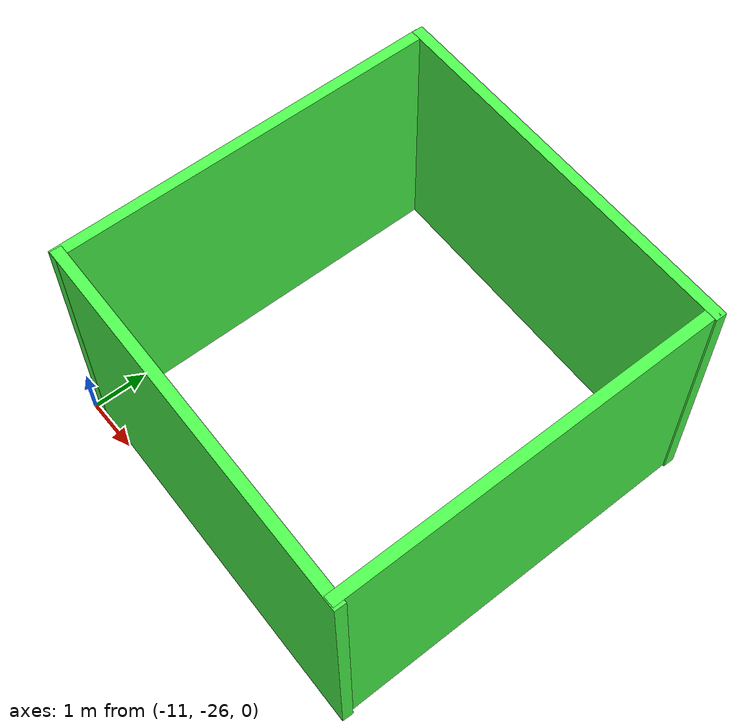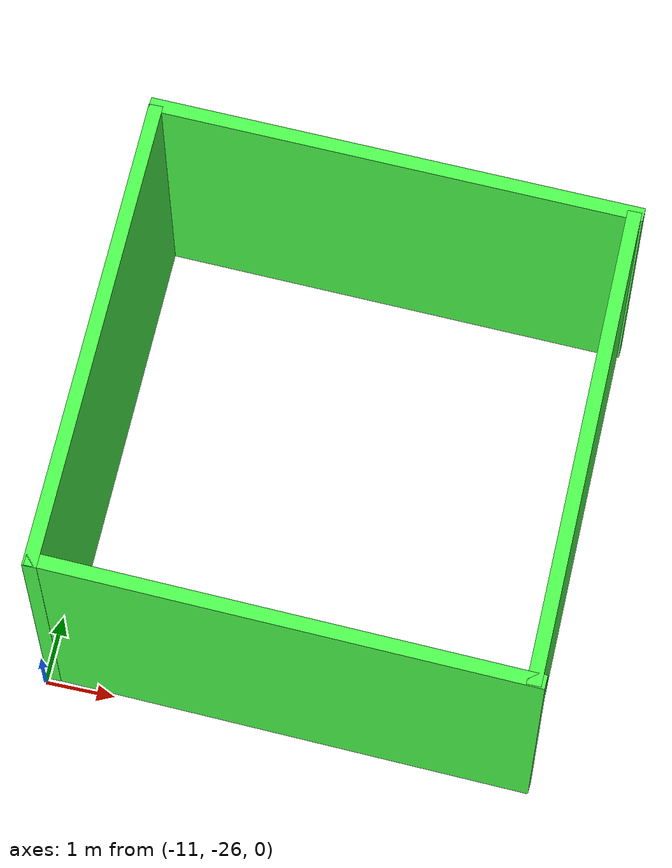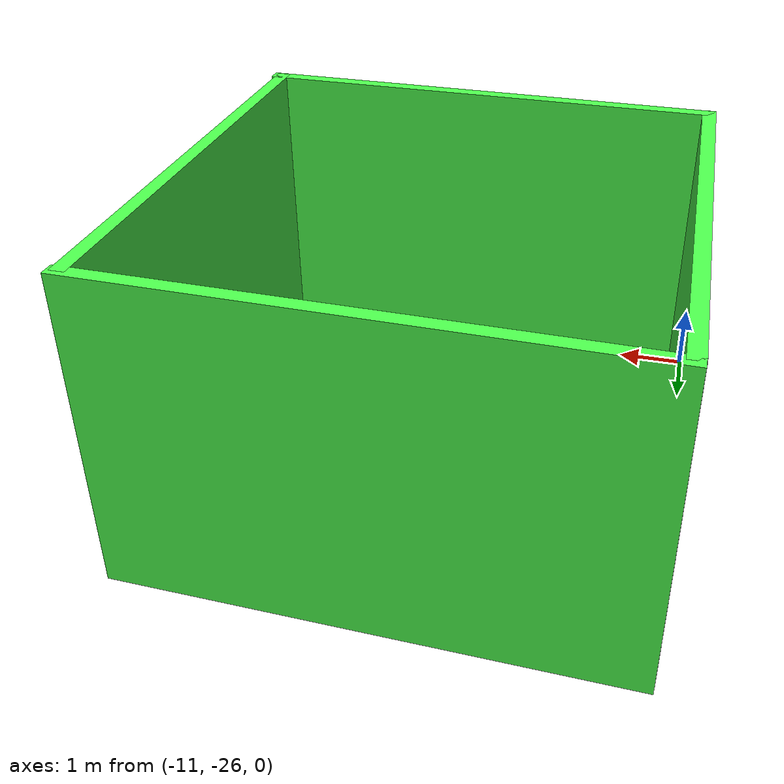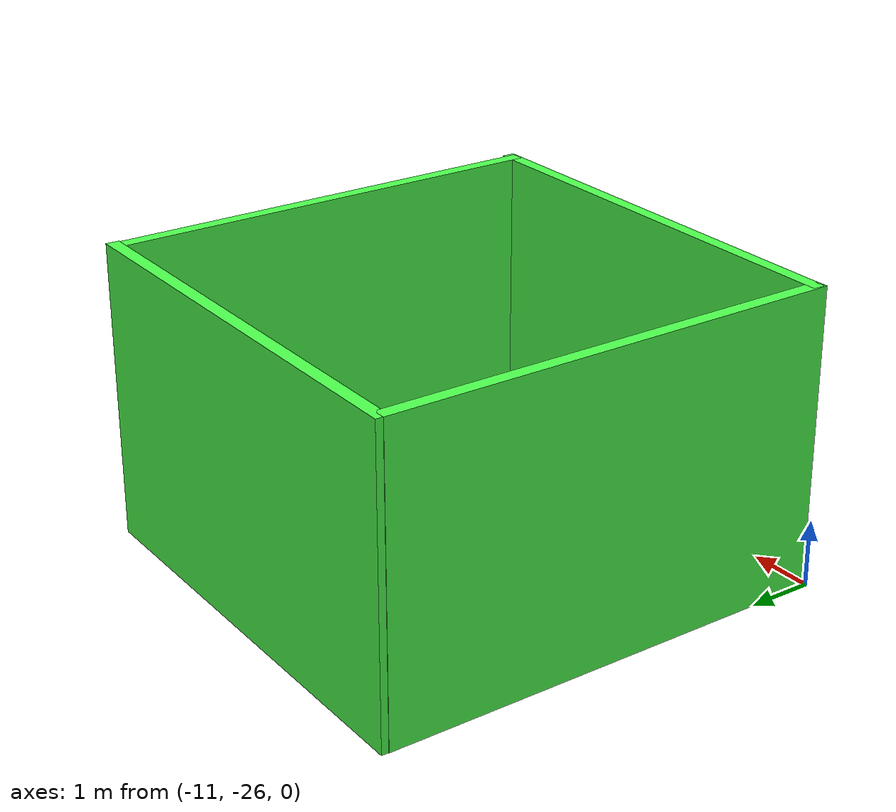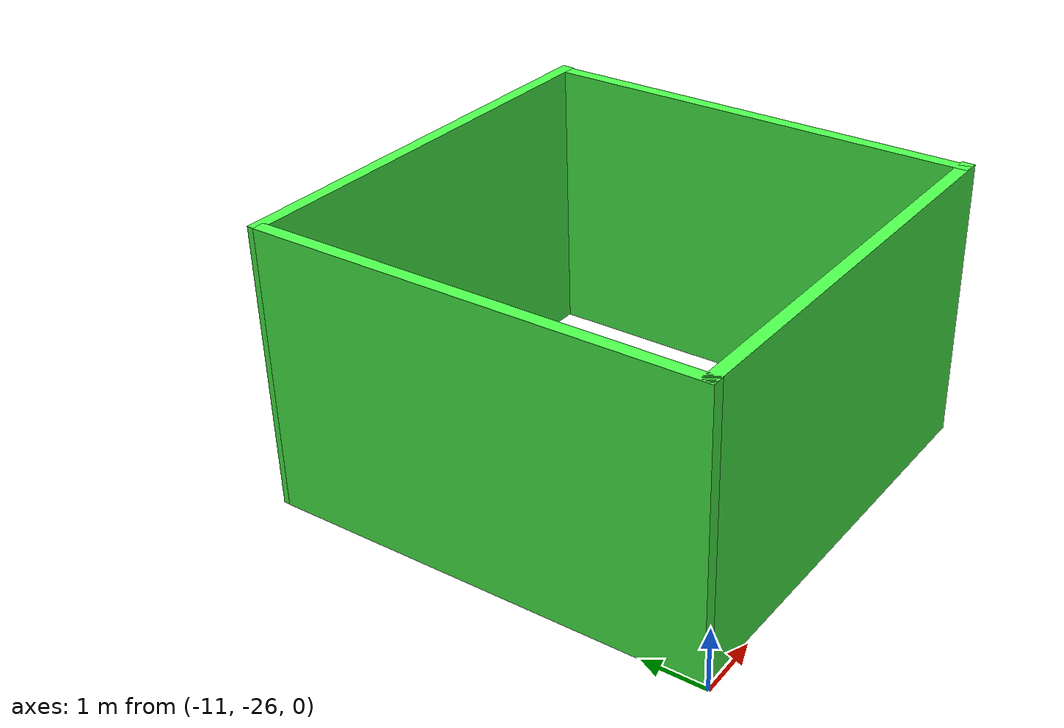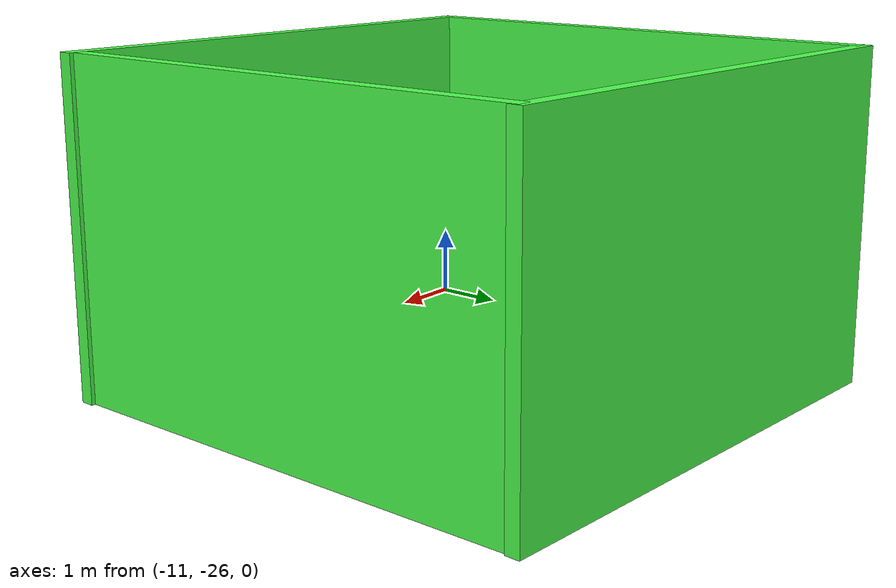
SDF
<sdf version="1.7">
 <world name="default">
  <model name="wall_clone_5">
   <pose>-7.5 -22.5 2.25 0 -0 0</pose>
   <frame name="closed_green_wall::__model__" attached_to="closed_green_wall::link_0">
    <pose relative_to="__model__">0 0 0 0 -0 0</pose>
   </frame>
   <link name="closed_green_wall::link_0">
    <inertial>
     <mass>1</mass>
     <inertia>
      <ixx>0.166667</ixx>
      <ixy>0</ixy>
      <ixz>0</ixz>
      <iyy>0.166667</iyy>
      <iyz>0</iyz>
      <izz>0.166667</izz>
     </inertia>
    </inertial>
    <pose relative_to="closed_green_wall::__model__">3.37098 -0.107634 -0 0 -0 0</pose>
    <visual name="visual">
     <geometry><box><size>0.2 7 4.5</size></box></geometry>
     <material>
      <lighting>1</lighting>
      <script><uri>file://media/materials/scripts/gazebo.material</uri><name>Gazebo/Grey</name></script>
      <shader type="vertex"><normal_map>__default__</normal_map></shader>
      <ambient>0.3 1 0.3 1</ambient>
      <diffuse>0.7 0.7 0.7 1</diffuse>
      <specular>0.01 0.01 0.01 1</specular>
      <emissive>0 0 0 1</emissive>
     </material>
    </visual>
    <collision name="collision">
     <geometry><box><size>0.2 7 4.5</size></box></geometry>
     <surface>
      <friction>
       <ode><mu>1</mu><mu2>1</mu2><fdir1>0 0 0</fdir1><slip1>0</slip1><slip2>0</slip2></ode>
       <torsional>
        <coefficient>1</coefficient>
        <patch_radius>0</patch_radius>
        <surface_radius>0</surface_radius>
        <use_patch_radius>1</use_patch_radius>
        <ode><slip>0</slip></ode>
       </torsional>
      </friction>
      <bounce><restitution_coefficient>0</restitution_coefficient><threshold>1e+06</threshold></bounce>
      <contact>
       <collide_without_contact>0</collide_without_contact>
       <collide_without_contact_bitmask>1</collide_without_contact_bitmask>
       <collide_bitmask>1</collide_bitmask>
       <ode>
        <soft_cfm>0</soft_cfm>
        <soft_erp>0.2</soft_erp>
        <kp>1e+13</kp>
        <kd>1</kd>
        <max_vel>0.01</max_vel>
        <min_depth>0</min_depth>
       </ode>
       <bullet>
        <split_impulse>1</split_impulse>
        <split_impulse_penetration_threshold>-0.01</split_impulse_penetration_threshold>
        <soft_cfm>0</soft_cfm>
        <soft_erp>0.2</soft_erp>
        <kp>1e+13</kp>
        <kd>1</kd>
       </bullet>
      </contact>
     </surface>
    </collision>
   </link>
   <link name="closed_green_wall::link_0_clone">
    <inertial>
     <mass>1</mass>
     <inertia>
      <ixx>0.166667</ixx>
      <ixy>0</ixy>
      <ixz>0</ixz>
      <iyy>0.166667</iyy>
      <iyz>0</iyz>
      <izz>0.166667</izz>
     </inertia>
    </inertial>
    <pose relative_to="closed_green_wall::__model__">0.024232 -3.42805 -0 0 0 -1.59986</pose>
    <visual name="visual">
     <geometry><box><size>0.2 7 4.5</size></box></geometry>
     <material>
      <lighting>1</lighting>
      <script><uri>file://media/materials/scripts/gazebo.material</uri><name>Gazebo/Grey</name></script>
      <shader type="vertex"><normal_map>__default__</normal_map></shader>
      <ambient>0.3 1 0.3 1</ambient>
      <diffuse>0.7 0.7 0.7 1</diffuse>
      <specular>0.01 0.01 0.01 1</specular>
      <emissive>0 0 0 1</emissive>
     </material>
    </visual>
    <collision name="collision">
     <geometry><box><size>0.2 7 4.5</size></box></geometry>
     <surface>
      <friction>
       <ode><mu>1</mu><mu2>1</mu2><fdir1>0 0 0</fdir1><slip1>0</slip1><slip2>0</slip2></ode>
       <torsional>
        <coefficient>1</coefficient>
        <patch_radius>0</patch_radius>
        <surface_radius>0</surface_radius>
        <use_patch_radius>1</use_patch_radius>
        <ode><slip>0</slip></ode>
       </torsional>
      </friction>
      <bounce><restitution_coefficient>0</restitution_coefficient><threshold>1e+06</threshold></bounce>
      <contact>
       <collide_without_contact>0</collide_without_contact>
       <collide_without_contact_bitmask>1</collide_without_contact_bitmask>
       <collide_bitmask>1</collide_bitmask>
       <ode>
        <soft_cfm>0</soft_cfm>
        <soft_erp>0.2</soft_erp>
        <kp>1e+13</kp>
        <kd>1</kd>
        <max_vel>0.01</max_vel>
        <min_depth>0</min_depth>
       </ode>
       <bullet>
        <split_impulse>1</split_impulse>
        <split_impulse_penetration_threshold>-0.01</split_impulse_penetration_threshold>
        <soft_cfm>0</soft_cfm>
        <soft_erp>0.2</soft_erp>
        <kp>1e+13</kp>
        <kd>1</kd>
       </bullet>
      </contact>
     </surface>
    </collision>
   </link>
   <link name="closed_green_wall::link_0_clone_0">
    <inertial>
     <mass>1</mass>
     <inertia>
      <ixx>0.166667</ixx>
      <ixy>0</ixy>
      <ixz>0</ixz>
      <iyy>0.166667</iyy>
      <iyz>0</iyz>
      <izz>0.166667</izz>
     </inertia>
    </inertial>
    <pose relative_to="closed_green_wall::__model__">-3.40001 0.065208 -0 0 -0 0</pose>
    <visual name="visual">
     <geometry><box><size>0.2 7 4.5</size></box></geometry>
     <material>
      <lighting>1</lighting>
      <script><uri>file://media/materials/scripts/gazebo.material</uri><name>Gazebo/Grey</name></script>
      <shader type="vertex"><normal_map>__default__</normal_map></shader>
      <ambient>0.3 1 0.3 1</ambient>
      <diffuse>0.7 0.7 0.7 1</diffuse>
      <specular>0.01 0.01 0.01 1</specular>
      <emissive>0 0 0 1</emissive>
     </material>
    </visual>
    <collision name="collision">
     <geometry><box><size>0.2 7 4.5</size></box></geometry>
     <surface>
      <friction>
       <ode><mu>1</mu><mu2>1</mu2><fdir1>0 0 0</fdir1><slip1>0</slip1><slip2>0</slip2></ode>
       <torsional>
        <coefficient>1</coefficient>
        <patch_radius>0</patch_radius>
        <surface_radius>0</surface_radius>
        <use_patch_radius>1</use_patch_radius>
        <ode><slip>0</slip></ode>
       </torsional>
      </friction>
      <bounce><restitution_coefficient>0</restitution_coefficient><threshold>1e+06</threshold></bounce>
      <contact>
       <collide_without_contact>0</collide_without_contact>
       <collide_without_contact_bitmask>1</collide_without_contact_bitmask>
       <collide_bitmask>1</collide_bitmask>
       <ode>
        <soft_cfm>0</soft_cfm>
        <soft_erp>0.2</soft_erp>
        <kp>1e+13</kp>
        <kd>1</kd>
        <max_vel>0.01</max_vel>
        <min_depth>0</min_depth>
       </ode>
       <bullet>
        <split_impulse>1</split_impulse>
        <split_impulse_penetration_threshold>-0.01</split_impulse_penetration_threshold>
        <soft_cfm>0</soft_cfm>
        <soft_erp>0.2</soft_erp>
        <kp>1e+13</kp>
        <kd>1</kd>
       </bullet>
      </contact>
     </surface>
    </collision>
   </link>
   <link name="closed_green_wall::link_0_clone_clone">
    <inertial>
     <mass>1</mass>
     <inertia>
      <ixx>0.166667</ixx>
      <ixy>0</ixy>
      <ixz>0</ixz>
      <iyy>0.166667</iyy>
      <iyz>0</iyz>
      <izz>0.166667</izz>
     </inertia>
    </inertial>
    <pose relative_to="closed_green_wall::__model__">0.004806 3.47046 -0 0 0 -1.59986</pose>
    <visual name="visual">
     <geometry><box><size>0.2 7 4.5</size></box></geometry>
     <material>
      <lighting>1</lighting>
      <script><uri>file://media/materials/scripts/gazebo.material</uri><name>Gazebo/Grey</name></script>
      <shader type="vertex"><normal_map>__default__</normal_map></shader>
      <ambient>0.3 1 0.3 1</ambient>
      <diffuse>0.7 0.7 0.7 1</diffuse>
      <specular>0.01 0.01 0.01 1</specular>
      <emissive>0 0 0 1</emissive>
     </material>
    </visual>
    <collision name="collision">
     <geometry><box><size>0.2 7 4.5</size></box></geometry>
     <surface>
      <friction>
       <ode><mu>1</mu><mu2>1</mu2><fdir1>0 0 0</fdir1><slip1>0</slip1><slip2>0</slip2></ode>
       <torsional>
        <coefficient>1</coefficient>
        <patch_radius>0</patch_radius>
        <surface_radius>0</surface_radius>
        <use_patch_radius>1</use_patch_radius>
        <ode><slip>0</slip></ode>
       </torsional>
      </friction>
      <bounce><restitution_coefficient>0</restitution_coefficient><threshold>1e+06</threshold></bounce>
      <contact>
       <collide_without_contact>0</collide_without_contact>
       <collide_without_contact_bitmask>1</collide_without_contact_bitmask>
       <collide_bitmask>1</collide_bitmask>
       <ode>
        <soft_cfm>0</soft_cfm>
        <soft_erp>0.2</soft_erp>
        <kp>1e+13</kp>
        <kd>1</kd>
        <max_vel>0.01</max_vel>
        <min_depth>0</min_depth>
       </ode>
       <bullet>
        <split_impulse>1</split_impulse>
        <split_impulse_penetration_threshold>-0.01</split_impulse_penetration_threshold>
        <soft_cfm>0</soft_cfm>
        <soft_erp>0.2</soft_erp>
        <kp>1e+13</kp>
        <kd>1</kd>
       </bullet>
      </contact>
     </surface>
    </collision>
   </link>
   <joint name="closed_green_wall::link_0_JOINT_1" type="fixed">
    <parent>closed_green_wall::link_0</parent>
    <child>closed_green_wall::link_0_clone_clone</child>
    <physics>
     <ode><limit><cfm>0</cfm><erp>0.2</erp></limit><suspension><cfm>0</cfm><erp>0.2</erp></suspension></ode>
    </physics>
   </joint>
   <joint name="closed_green_wall::link_0_clone_0_JOINT_3" type="fixed">
    <parent>closed_green_wall::link_0_clone_0</parent>
    <child>closed_green_wall::link_0_clone</child>
    <physics>
     <ode><limit><cfm>0</cfm><erp>0.2</erp></limit><suspension><cfm>0</cfm><erp>0.2</erp></suspension></ode>
    </physics>
   </joint>
   <joint name="closed_green_wall::link_0_clone_JOINT_0" type="fixed">
    <parent>closed_green_wall::link_0_clone</parent>
    <child>closed_green_wall::link_0</child>
    <physics>
     <ode><limit><cfm>0</cfm><erp>0.2</erp></limit><suspension><cfm>0</cfm><erp>0.2</erp></suspension></ode>
    </physics>
   </joint>
   <joint name="closed_green_wall::link_0_clone_clone_JOINT_2" type="fixed">
    <parent>closed_green_wall::link_0_clone_clone</parent>
    <child>closed_green_wall::link_0_clone_0</child>
    <physics>
     <ode><limit><cfm>0</cfm><erp>0.2</erp></limit><suspension><cfm>0</cfm><erp>0.2</erp></suspension></ode>
    </physics>
   </joint>
   <static>1</static>
  </model>
 </world>
</sdf>
